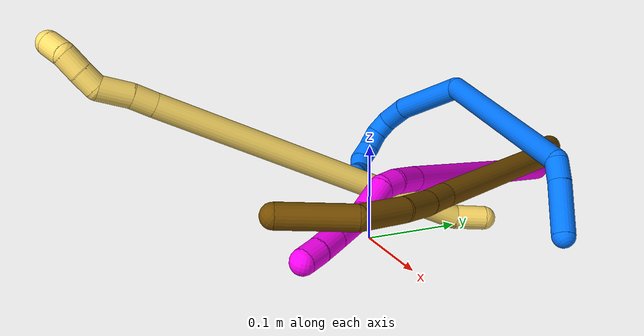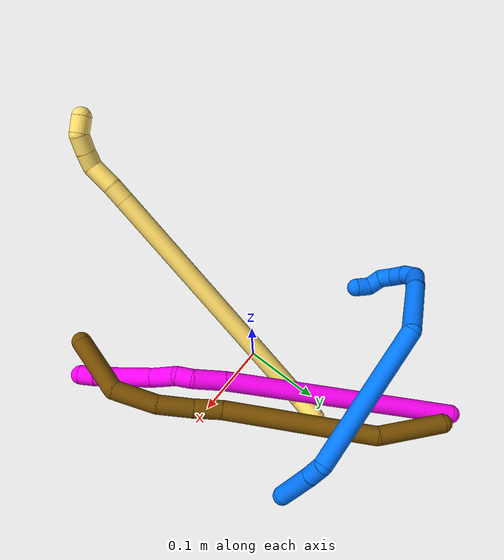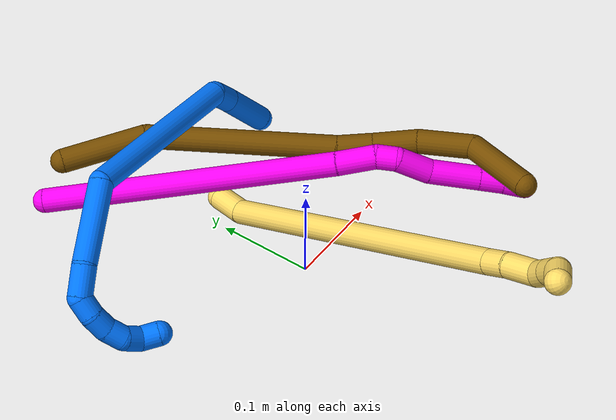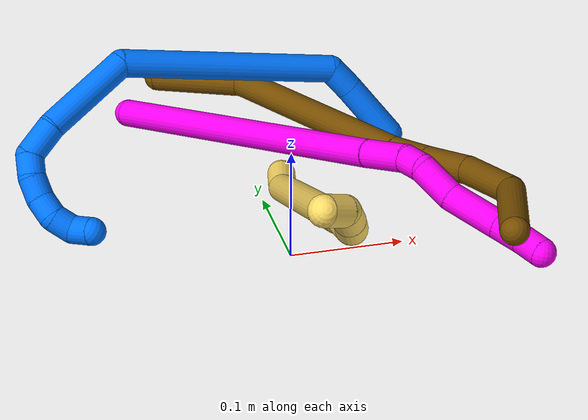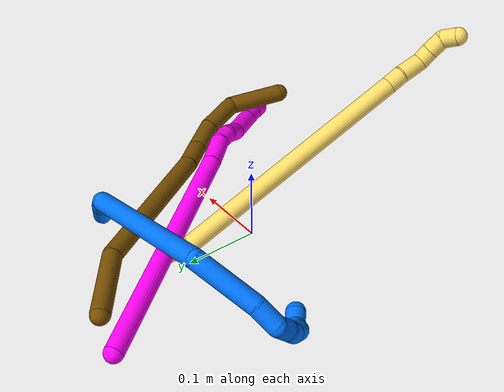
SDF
<sdf version="1.7">
 <world name="default">
  <model name="5">
   <static>0</static>
   <link name="5">
    <collision name="collision-cylinder-e_1_1_4">
     <pose>-0.002042 -0.008646 0.014094 0.550265 -0.122898 -0.034733</pose>
     <geometry><cylinder><radius>0.0125</radius><length>0.033321</length></cylinder></geometry>
     <surface>
      <friction><ode><mu>1.16</mu><mu2>1.16</mu2><slip1>0</slip1><slip2>0</slip2></ode></friction>
      <contact><ode><kp>1e+06</kp><kd>1</kd><max_vel>0</max_vel><min_depth>0.001</min_depth></ode></contact>
     </surface>
    </collision>
    <visual name="visual-cylinder-e_1_1_4">
     <pose>-0.002042 -0.008646 0.014094 0.550265 -0.122898 -0.034733</pose>
     <geometry><cylinder><radius>0.0125</radius><length>0.033321</length></cylinder></geometry>
     <material><ambient>1 0.858824 0.4 1</ambient></material>
    </visual>
    <collision name="collision-cylinder-e_2_4_5">
     <pose>-0.010283 -0.054056 0.196571 0.214959 -0.035949 -0.003879</pose>
     <geometry><cylinder><radius>0.0125</radius><length>0.344922</length></cylinder></geometry>
     <surface>
      <friction><ode><mu>1.16</mu><mu2>1.16</mu2><slip1>0</slip1><slip2>0</slip2></ode></friction>
      <contact><ode><kp>1e+06</kp><kd>1</kd><max_vel>0</max_vel><min_depth>0.001</min_depth></ode></contact>
     </surface>
    </collision>
    <visual name="visual-cylinder-e_2_4_5">
     <pose>-0.010283 -0.054056 0.196571 0.214959 -0.035949 -0.003879</pose>
     <geometry><cylinder><radius>0.0125</radius><length>0.344922</length></cylinder></geometry>
     <material><ambient>1 0.858824 0.4 1</ambient></material>
    </visual>
    <collision name="collision-cylinder-e_3_5_6">
     <pose>-0.016825 -0.09301 0.376407 0.188976 -0.029454 -0.002792</pose>
     <geometry><cylinder><radius>0.0125</radius><length>0.023331</length></cylinder></geometry>
     <surface>
      <friction><ode><mu>1.16</mu><mu2>1.16</mu2><slip1>0</slip1><slip2>0</slip2></ode></friction>
      <contact><ode><kp>1e+06</kp><kd>1</kd><max_vel>0</max_vel><min_depth>0.001</min_depth></ode></contact>
     </surface>
    </collision>
    <visual name="visual-cylinder-e_3_5_6">
     <pose>-0.016825 -0.09301 0.376407 0.188976 -0.029454 -0.002792</pose>
     <geometry><cylinder><radius>0.0125</radius><length>0.023331</length></cylinder></geometry>
     <material><ambient>1 0.858824 0.4 1</ambient></material>
    </visual>
    <collision name="collision-cylinder-e_4_6_7">
     <pose>-0.017083 -0.100845 0.403821 0.339902 0.005093 0.000874</pose>
     <geometry><cylinder><radius>0.0125</radius><length>0.033859</length></cylinder></geometry>
     <surface>
      <friction><ode><mu>1.16</mu><mu2>1.16</mu2><slip1>0</slip1><slip2>0</slip2></ode></friction>
      <contact><ode><kp>1e+06</kp><kd>1</kd><max_vel>0</max_vel><min_depth>0.001</min_depth></ode></contact>
     </surface>
    </collision>
    <visual name="visual-cylinder-e_4_6_7">
     <pose>-0.017083 -0.100845 0.403821 0.339902 0.005093 0.000874</pose>
     <geometry><cylinder><radius>0.0125</radius><length>0.033859</length></cylinder></geometry>
     <material><ambient>1 0.858824 0.4 1</ambient></material>
    </visual>
    <collision name="collision-cylinder-e_5_7_8">
     <pose>-0.019418 -0.104676 0.429389 -0.186456 -0.242778 0.022811</pose>
     <geometry><cylinder><radius>0.0125</radius><length>0.020145</length></cylinder></geometry>
     <surface>
      <friction><ode><mu>1.16</mu><mu2>1.16</mu2><slip1>0</slip1><slip2>0</slip2></ode></friction>
      <contact><ode><kp>1e+06</kp><kd>1</kd><max_vel>0</max_vel><min_depth>0.001</min_depth></ode></contact>
     </surface>
    </collision>
    <visual name="visual-cylinder-e_5_7_8">
     <pose>-0.019418 -0.104676 0.429389 -0.186456 -0.242778 0.022811</pose>
     <geometry><cylinder><radius>0.0125</radius><length>0.020145</length></cylinder></geometry>
     <material><ambient>1 0.858824 0.4 1</ambient></material>
    </visual>
    <collision name="collision-cylinder-e_6_8_9">
     <pose>-0.0254 -0.100541 0.449317 -0.221353 -0.324699 0.0364</pose>
     <geometry><cylinder><radius>0.0125</radius><length>0.022323</length></cylinder></geometry>
     <surface>
      <friction><ode><mu>1.16</mu><mu2>1.16</mu2><slip1>0</slip1><slip2>0</slip2></ode></friction>
      <contact><ode><kp>1e+06</kp><kd>1</kd><max_vel>0</max_vel><min_depth>0.001</min_depth></ode></contact>
     </surface>
    </collision>
    <visual name="visual-cylinder-e_6_8_9">
     <pose>-0.0254 -0.100541 0.449317 -0.221353 -0.324699 0.0364</pose>
     <geometry><cylinder><radius>0.0125</radius><length>0.022323</length></cylinder></geometry>
     <material><ambient>1 0.858824 0.4 1</ambient></material>
    </visual>
    <collision name="collision-cylinder-e_7_9_2">
     <pose>-0.037629 -0.098937 0.466451 0.104984 -0.901922 -0.050874</pose>
     <geometry><cylinder><radius>0.0125</radius><length>0.022099</length></cylinder></geometry>
     <surface>
      <friction><ode><mu>1.16</mu><mu2>1.16</mu2><slip1>0</slip1><slip2>0</slip2></ode></friction>
      <contact><ode><kp>1e+06</kp><kd>1</kd><max_vel>0</max_vel><min_depth>0.001</min_depth></ode></contact>
     </surface>
    </collision>
    <visual name="visual-cylinder-e_7_9_2">
     <pose>-0.037629 -0.098937 0.466451 0.104984 -0.901922 -0.050874</pose>
     <geometry><cylinder><radius>0.0125</radius><length>0.022099</length></cylinder></geometry>
     <material><ambient>1 0.858824 0.4 1</ambient></material>
    </visual>
    <collision name="collision-sphere-2">
     <pose>-0.046298 -0.099655 0.473265 0 -0 0</pose>
     <geometry><sphere><radius>0.0125</radius></sphere></geometry>
     <surface>
      <friction><ode><mu>1.16</mu><mu2>1.16</mu2><slip1>0</slip1><slip2>0</slip2></ode></friction>
      <contact><ode><kp>1e+06</kp><kd>1</kd><max_vel>0</max_vel><min_depth>0.001</min_depth></ode></contact>
     </surface>
    </collision>
    <visual name="visual-sphere-2">
     <pose>-0.046298 -0.099655 0.473265 0 -0 0</pose>
     <geometry><sphere><radius>0.0125</radius></sphere></geometry>
     <material><ambient>1 0.858824 0.4 1</ambient></material>
    </visual>
    <collision name="collision-sphere-9">
     <pose>-0.028961 -0.098219 0.459637 0 -0 0</pose>
     <geometry><sphere><radius>0.0125</radius></sphere></geometry>
     <surface>
      <friction><ode><mu>1.16</mu><mu2>1.16</mu2><slip1>0</slip1><slip2>0</slip2></ode></friction>
      <contact><ode><kp>1e+06</kp><kd>1</kd><max_vel>0</max_vel><min_depth>0.001</min_depth></ode></contact>
     </surface>
    </collision>
    <visual name="visual-sphere-9">
     <pose>-0.028961 -0.098219 0.459637 0 -0 0</pose>
     <geometry><sphere><radius>0.0125</radius></sphere></geometry>
     <material><ambient>1 0.858824 0.4 1</ambient></material>
    </visual>
    <collision name="collision-sphere-4">
     <pose>-0.004085 -0.017293 0.028188 0 -0 0</pose>
     <geometry><sphere><radius>0.0125</radius></sphere></geometry>
     <surface>
      <friction><ode><mu>1.16</mu><mu2>1.16</mu2><slip1>0</slip1><slip2>0</slip2></ode></friction>
      <contact><ode><kp>1e+06</kp><kd>1</kd><max_vel>0</max_vel><min_depth>0.001</min_depth></ode></contact>
     </surface>
    </collision>
    <visual name="visual-sphere-4">
     <pose>-0.004085 -0.017293 0.028188 0 -0 0</pose>
     <geometry><sphere><radius>0.0125</radius></sphere></geometry>
     <material><ambient>1 0.858824 0.4 1</ambient></material>
    </visual>
    <collision name="collision-sphere-1">
     <geometry><sphere><radius>0.0125</radius></sphere></geometry>
     <surface>
      <friction><ode><mu>1.16</mu><mu2>1.16</mu2><slip1>0</slip1><slip2>0</slip2></ode></friction>
      <contact><ode><kp>1e+06</kp><kd>1</kd><max_vel>0</max_vel><min_depth>0.001</min_depth></ode></contact>
     </surface>
    </collision>
    <visual name="visual-sphere-1">
     <geometry><sphere><radius>0.0125</radius></sphere></geometry>
     <material><ambient>1 0.858824 0.4 1</ambient></material>
    </visual>
    <collision name="collision-sphere-8">
     <pose>-0.021839 -0.102864 0.438996 0 -0 0</pose>
     <geometry><sphere><radius>0.0125</radius></sphere></geometry>
     <surface>
      <friction><ode><mu>1.16</mu><mu2>1.16</mu2><slip1>0</slip1><slip2>0</slip2></ode></friction>
      <contact><ode><kp>1e+06</kp><kd>1</kd><max_vel>0</max_vel><min_depth>0.001</min_depth></ode></contact>
     </surface>
    </collision>
    <visual name="visual-sphere-8">
     <pose>-0.021839 -0.102864 0.438996 0 -0 0</pose>
     <geometry><sphere><radius>0.0125</radius></sphere></geometry>
     <material><ambient>1 0.858824 0.4 1</ambient></material>
    </visual>
    <collision name="collision-sphere-5">
     <pose>-0.016482 -0.090819 0.364954 0 -0 0</pose>
     <geometry><sphere><radius>0.0125</radius></sphere></geometry>
     <surface>
      <friction><ode><mu>1.16</mu><mu2>1.16</mu2><slip1>0</slip1><slip2>0</slip2></ode></friction>
      <contact><ode><kp>1e+06</kp><kd>1</kd><max_vel>0</max_vel><min_depth>0.001</min_depth></ode></contact>
     </surface>
    </collision>
    <visual name="visual-sphere-5">
     <pose>-0.016482 -0.090819 0.364954 0 -0 0</pose>
     <geometry><sphere><radius>0.0125</radius></sphere></geometry>
     <material><ambient>1 0.858824 0.4 1</ambient></material>
    </visual>
    <collision name="collision-sphere-6">
     <pose>-0.017169 -0.0952 0.38786 0 -0 0</pose>
     <geometry><sphere><radius>0.0125</radius></sphere></geometry>
     <surface>
      <friction><ode><mu>1.16</mu><mu2>1.16</mu2><slip1>0</slip1><slip2>0</slip2></ode></friction>
      <contact><ode><kp>1e+06</kp><kd>1</kd><max_vel>0</max_vel><min_depth>0.001</min_depth></ode></contact>
     </surface>
    </collision>
    <visual name="visual-sphere-6">
     <pose>-0.017169 -0.0952 0.38786 0 -0 0</pose>
     <geometry><sphere><radius>0.0125</radius></sphere></geometry>
     <material><ambient>1 0.858824 0.4 1</ambient></material>
    </visual>
    <collision name="collision-sphere-7">
     <pose>-0.016996 -0.106489 0.419781 0 -0 0</pose>
     <geometry><sphere><radius>0.0125</radius></sphere></geometry>
     <surface>
      <friction><ode><mu>1.16</mu><mu2>1.16</mu2><slip1>0</slip1><slip2>0</slip2></ode></friction>
      <contact><ode><kp>1e+06</kp><kd>1</kd><max_vel>0</max_vel><min_depth>0.001</min_depth></ode></contact>
     </surface>
    </collision>
    <visual name="visual-sphere-7">
     <pose>-0.016996 -0.106489 0.419781 0 -0 0</pose>
     <geometry><sphere><radius>0.0125</radius></sphere></geometry>
     <material><ambient>1 0.858824 0.4 1</ambient></material>
    </visual>
    <inertial>
     <pose>-0.012751 -0.062114 0.239429 0 -0 0</pose>
     <mass>0.5</mass>
     <inertia>
      <ixx>0.003429</ixx>
      <ixy>0</ixy>
      <ixz>0</ixz>
      <iyy>0.003348</iyy>
      <iyz>0</iyz>
      <izz>0.000899</izz>
     </inertia>
    </inertial>
   </link>
   <pose>0.023051 0.123808 0.011487 0.916341 0.052907 -0.098674</pose>
  </model>
  <model name="10">
   <static>0</static>
   <link name="10">
    <collision name="collision-cylinder-e_1_1_4">
     <pose>0.067945 -0.134247 0.025618 1.38223 0.461361 0.383781</pose>
     <geometry><cylinder><radius>0.0125</radius><length>0.305254</length></cylinder></geometry>
     <surface>
      <friction><ode><mu>1.16</mu><mu2>1.16</mu2><slip1>0</slip1><slip2>0</slip2></ode></friction>
      <contact><ode><kp>1e+06</kp><kd>1</kd><max_vel>0</max_vel><min_depth>0.001</min_depth></ode></contact>
     </surface>
    </collision>
    <visual name="visual-cylinder-e_1_1_4">
     <pose>0.067945 -0.134247 0.025618 1.38223 0.461361 0.383781</pose>
     <geometry><cylinder><radius>0.0125</radius><length>0.305254</length></cylinder></geometry>
     <material><ambient>1 0 0.964706 1</ambient></material>
    </visual>
    <collision name="collision-cylinder-e_2_4_5">
     <pose>0.146256 -0.285378 0.054898 1.35728 0.54045 0.43954</pose>
     <geometry><cylinder><radius>0.0125</radius><length>0.040296</length></cylinder></geometry>
     <surface>
      <friction><ode><mu>1.16</mu><mu2>1.16</mu2><slip1>0</slip1><slip2>0</slip2></ode></friction>
      <contact><ode><kp>1e+06</kp><kd>1</kd><max_vel>0</max_vel><min_depth>0.001</min_depth></ode></contact>
     </surface>
    </collision>
    <visual name="visual-cylinder-e_2_4_5">
     <pose>0.146256 -0.285378 0.054898 1.35728 0.54045 0.43954</pose>
     <geometry><cylinder><radius>0.0125</radius><length>0.040296</length></cylinder></geometry>
     <material><ambient>1 0 0.964706 1</ambient></material>
    </visual>
    <collision name="collision-cylinder-e_3_5_6">
     <pose>0.161004 -0.311663 0.057601 1.6723 0.434177 0.478971</pose>
     <geometry><cylinder><radius>0.0125</radius><length>0.020831</length></cylinder></geometry>
     <surface>
      <friction><ode><mu>1.16</mu><mu2>1.16</mu2><slip1>0</slip1><slip2>0</slip2></ode></friction>
      <contact><ode><kp>1e+06</kp><kd>1</kd><max_vel>0</max_vel><min_depth>0.001</min_depth></ode></contact>
     </surface>
    </collision>
    <visual name="visual-cylinder-e_3_5_6">
     <pose>0.161004 -0.311663 0.057601 1.6723 0.434177 0.478971</pose>
     <geometry><cylinder><radius>0.0125</radius><length>0.020831</length></cylinder></geometry>
     <material><ambient>1 0 0.964706 1</ambient></material>
    </visual>
    <collision name="collision-cylinder-e_4_6_7">
     <pose>0.175546 -0.333326 0.048427 2.16109 0.602864 1.05496</pose>
     <geometry><cylinder><radius>0.0125</radius><length>0.03584</length></cylinder></geometry>
     <surface>
      <friction><ode><mu>1.16</mu><mu2>1.16</mu2><slip1>0</slip1><slip2>0</slip2></ode></friction>
      <contact><ode><kp>1e+06</kp><kd>1</kd><max_vel>0</max_vel><min_depth>0.001</min_depth></ode></contact>
     </surface>
    </collision>
    <visual name="visual-cylinder-e_4_6_7">
     <pose>0.175546 -0.333326 0.048427 2.16109 0.602864 1.05496</pose>
     <geometry><cylinder><radius>0.0125</radius><length>0.03584</length></cylinder></geometry>
     <material><ambient>1 0 0.964706 1</ambient></material>
    </visual>
    <collision name="collision-cylinder-e_5_7_8">
     <pose>0.19991 -0.366274 0.035354 1.80145 0.58926 0.731495</pose>
     <geometry><cylinder><radius>0.0125</radius><length>0.051115</length></cylinder></geometry>
     <surface>
      <friction><ode><mu>1.16</mu><mu2>1.16</mu2><slip1>0</slip1><slip2>0</slip2></ode></friction>
      <contact><ode><kp>1e+06</kp><kd>1</kd><max_vel>0</max_vel><min_depth>0.001</min_depth></ode></contact>
     </surface>
    </collision>
    <visual name="visual-cylinder-e_5_7_8">
     <pose>0.19991 -0.366274 0.035354 1.80145 0.58926 0.731495</pose>
     <geometry><cylinder><radius>0.0125</radius><length>0.051115</length></cylinder></geometry>
     <material><ambient>1 0 0.964706 1</ambient></material>
    </visual>
    <collision name="collision-cylinder-e_6_8_9">
     <pose>0.22101 -0.397215 0.028132 1.79735 0.580017 0.717607</pose>
     <geometry><cylinder><radius>0.0125</radius><length>0.025167</length></cylinder></geometry>
     <surface>
      <friction><ode><mu>1.16</mu><mu2>1.16</mu2><slip1>0</slip1><slip2>0</slip2></ode></friction>
      <contact><ode><kp>1e+06</kp><kd>1</kd><max_vel>0</max_vel><min_depth>0.001</min_depth></ode></contact>
     </surface>
    </collision>
    <visual name="visual-cylinder-e_6_8_9">
     <pose>0.22101 -0.397215 0.028132 1.79735 0.580017 0.717607</pose>
     <geometry><cylinder><radius>0.0125</radius><length>0.025167</length></cylinder></geometry>
     <material><ambient>1 0 0.964706 1</ambient></material>
    </visual>
    <collision name="collision-cylinder-e_7_9_2">
     <pose>0.233081 -0.416603 0.023451 1.81926 0.502305 0.637118</pose>
     <geometry><cylinder><radius>0.0125</radius><length>0.021496</length></cylinder></geometry>
     <surface>
      <friction><ode><mu>1.16</mu><mu2>1.16</mu2><slip1>0</slip1><slip2>0</slip2></ode></friction>
      <contact><ode><kp>1e+06</kp><kd>1</kd><max_vel>0</max_vel><min_depth>0.001</min_depth></ode></contact>
     </surface>
    </collision>
    <visual name="visual-cylinder-e_7_9_2">
     <pose>0.233081 -0.416603 0.023451 1.81926 0.502305 0.637118</pose>
     <geometry><cylinder><radius>0.0125</radius><length>0.021496</length></cylinder></geometry>
     <material><ambient>1 0 0.964706 1</ambient></material>
    </visual>
    <collision name="collision-sphere-2">
     <pose>0.238256 -0.425734 0.021135 0 -0 0</pose>
     <geometry><sphere><radius>0.0125</radius></sphere></geometry>
     <surface>
      <friction><ode><mu>1.16</mu><mu2>1.16</mu2><slip1>0</slip1><slip2>0</slip2></ode></friction>
      <contact><ode><kp>1e+06</kp><kd>1</kd><max_vel>0</max_vel><min_depth>0.001</min_depth></ode></contact>
     </surface>
    </collision>
    <visual name="visual-sphere-2">
     <pose>0.238256 -0.425734 0.021135 0 -0 0</pose>
     <geometry><sphere><radius>0.0125</radius></sphere></geometry>
     <material><ambient>1 0 0.964706 1</ambient></material>
    </visual>
    <collision name="collision-sphere-9">
     <pose>0.227907 -0.407472 0.025768 0 -0 0</pose>
     <geometry><sphere><radius>0.0125</radius></sphere></geometry>
     <surface>
      <friction><ode><mu>1.16</mu><mu2>1.16</mu2><slip1>0</slip1><slip2>0</slip2></ode></friction>
      <contact><ode><kp>1e+06</kp><kd>1</kd><max_vel>0</max_vel><min_depth>0.001</min_depth></ode></contact>
     </surface>
    </collision>
    <visual name="visual-sphere-9">
     <pose>0.227907 -0.407472 0.025768 0 -0 0</pose>
     <geometry><sphere><radius>0.0125</radius></sphere></geometry>
     <material><ambient>1 0 0.964706 1</ambient></material>
    </visual>
    <collision name="collision-sphere-4">
     <pose>0.135889 -0.268494 0.051237 0 -0 0</pose>
     <geometry><sphere><radius>0.0125</radius></sphere></geometry>
     <surface>
      <friction><ode><mu>1.16</mu><mu2>1.16</mu2><slip1>0</slip1><slip2>0</slip2></ode></friction>
      <contact><ode><kp>1e+06</kp><kd>1</kd><max_vel>0</max_vel><min_depth>0.001</min_depth></ode></contact>
     </surface>
    </collision>
    <visual name="visual-sphere-4">
     <pose>0.135889 -0.268494 0.051237 0 -0 0</pose>
     <geometry><sphere><radius>0.0125</radius></sphere></geometry>
     <material><ambient>1 0 0.964706 1</ambient></material>
    </visual>
    <collision name="collision-sphere-1">
     <geometry><sphere><radius>0.0125</radius></sphere></geometry>
     <surface>
      <friction><ode><mu>1.16</mu><mu2>1.16</mu2><slip1>0</slip1><slip2>0</slip2></ode></friction>
      <contact><ode><kp>1e+06</kp><kd>1</kd><max_vel>0</max_vel><min_depth>0.001</min_depth></ode></contact>
     </surface>
    </collision>
    <visual name="visual-sphere-1">
     <geometry><sphere><radius>0.0125</radius></sphere></geometry>
     <material><ambient>1 0 0.964706 1</ambient></material>
    </visual>
    <collision name="collision-sphere-8">
     <pose>0.214114 -0.386959 0.030496 0 -0 0</pose>
     <geometry><sphere><radius>0.0125</radius></sphere></geometry>
     <surface>
      <friction><ode><mu>1.16</mu><mu2>1.16</mu2><slip1>0</slip1><slip2>0</slip2></ode></friction>
      <contact><ode><kp>1e+06</kp><kd>1</kd><max_vel>0</max_vel><min_depth>0.001</min_depth></ode></contact>
     </surface>
    </collision>
    <visual name="visual-sphere-8">
     <pose>0.214114 -0.386959 0.030496 0 -0 0</pose>
     <geometry><sphere><radius>0.0125</radius></sphere></geometry>
     <material><ambient>1 0 0.964706 1</ambient></material>
    </visual>
    <collision name="collision-sphere-5">
     <pose>0.156623 -0.302262 0.058558 0 -0 0</pose>
     <geometry><sphere><radius>0.0125</radius></sphere></geometry>
     <surface>
      <friction><ode><mu>1.16</mu><mu2>1.16</mu2><slip1>0</slip1><slip2>0</slip2></ode></friction>
      <contact><ode><kp>1e+06</kp><kd>1</kd><max_vel>0</max_vel><min_depth>0.001</min_depth></ode></contact>
     </surface>
    </collision>
    <visual name="visual-sphere-5">
     <pose>0.156623 -0.302262 0.058558 0 -0 0</pose>
     <geometry><sphere><radius>0.0125</radius></sphere></geometry>
     <material><ambient>1 0 0.964706 1</ambient></material>
    </visual>
    <collision name="collision-sphere-6">
     <pose>0.165385 -0.321063 0.056643 0 -0 0</pose>
     <geometry><sphere><radius>0.0125</radius></sphere></geometry>
     <surface>
      <friction><ode><mu>1.16</mu><mu2>1.16</mu2><slip1>0</slip1><slip2>0</slip2></ode></friction>
      <contact><ode><kp>1e+06</kp><kd>1</kd><max_vel>0</max_vel><min_depth>0.001</min_depth></ode></contact>
     </surface>
    </collision>
    <visual name="visual-sphere-6">
     <pose>0.165385 -0.321063 0.056643 0 -0 0</pose>
     <geometry><sphere><radius>0.0125</radius></sphere></geometry>
     <material><ambient>1 0 0.964706 1</ambient></material>
    </visual>
    <collision name="collision-sphere-7">
     <pose>0.185707 -0.345589 0.040211 0 -0 0</pose>
     <geometry><sphere><radius>0.0125</radius></sphere></geometry>
     <surface>
      <friction><ode><mu>1.16</mu><mu2>1.16</mu2><slip1>0</slip1><slip2>0</slip2></ode></friction>
      <contact><ode><kp>1e+06</kp><kd>1</kd><max_vel>0</max_vel><min_depth>0.001</min_depth></ode></contact>
     </surface>
    </collision>
    <visual name="visual-sphere-7">
     <pose>0.185707 -0.345589 0.040211 0 -0 0</pose>
     <geometry><sphere><radius>0.0125</radius></sphere></geometry>
     <material><ambient>1 0 0.964706 1</ambient></material>
    </visual>
    <inertial>
     <pose>0.114141 -0.217184 0.031974 0 -0 0</pose>
     <mass>0.5</mass>
     <inertia>
      <ixx>0.002831</ixx>
      <ixy>0</ixy>
      <ixz>0</ixz>
      <iyy>0.001593</iyy>
      <iyz>0</iyz>
      <izz>0.001045</izz>
     </inertia>
    </inertial>
   </link>
   <pose>-0.089661 0.263105 0.01695 -0.18778 0.227599 0.024684</pose>
  </model>
  <model name="12">
   <static>0</static>
   <link name="12">
    <collision name="collision-cylinder-e_1_1_4">
     <pose>0.04151 -0.01524 -0.001528 1.67072 1.21731 1.31271</pose>
     <geometry><cylinder><radius>0.0125</radius><length>0.088492</length></cylinder></geometry>
     <surface>
      <friction><ode><mu>1.16</mu><mu2>1.16</mu2><slip1>0</slip1><slip2>0</slip2></ode></friction>
      <contact><ode><kp>1e+06</kp><kd>1</kd><max_vel>0</max_vel><min_depth>0.001</min_depth></ode></contact>
     </surface>
    </collision>
    <visual name="visual-cylinder-e_1_1_4">
     <pose>0.04151 -0.01524 -0.001528 1.67072 1.21731 1.31271</pose>
     <geometry><cylinder><radius>0.0125</radius><length>0.088492</length></cylinder></geometry>
     <material><ambient>0.466667 0.301961 0 1</ambient></material>
    </visual>
    <collision name="collision-cylinder-e_2_4_5">
     <pose>0.158537 -0.090305 0.016472 1.25528 0.876057 0.655136</pose>
     <geometry><cylinder><radius>0.0125</radius><length>0.196601</length></cylinder></geometry>
     <surface>
      <friction><ode><mu>1.16</mu><mu2>1.16</mu2><slip1>0</slip1><slip2>0</slip2></ode></friction>
      <contact><ode><kp>1e+06</kp><kd>1</kd><max_vel>0</max_vel><min_depth>0.001</min_depth></ode></contact>
     </surface>
    </collision>
    <visual name="visual-cylinder-e_2_4_5">
     <pose>0.158537 -0.090305 0.016472 1.25528 0.876057 0.655136</pose>
     <geometry><cylinder><radius>0.0125</radius><length>0.196601</length></cylinder></geometry>
     <material><ambient>0.466667 0.301961 0 1</ambient></material>
    </visual>
    <collision name="collision-cylinder-e_3_5_6">
     <pose>0.249408 -0.15965 0.038267 1.33691 1.00332 0.817498</pose>
     <geometry><cylinder><radius>0.0125</radius><length>0.036417</length></cylinder></geometry>
     <surface>
      <friction><ode><mu>1.16</mu><mu2>1.16</mu2><slip1>0</slip1><slip2>0</slip2></ode></friction>
      <contact><ode><kp>1e+06</kp><kd>1</kd><max_vel>0</max_vel><min_depth>0.001</min_depth></ode></contact>
     </surface>
    </collision>
    <visual name="visual-cylinder-e_3_5_6">
     <pose>0.249408 -0.15965 0.038267 1.33691 1.00332 0.817498</pose>
     <geometry><cylinder><radius>0.0125</radius><length>0.036417</length></cylinder></geometry>
     <material><ambient>0.466667 0.301961 0 1</ambient></material>
    </visual>
    <collision name="collision-cylinder-e_4_6_7">
     <pose>0.284191 -0.180392 0.045101 1.18445 1.01323 0.714629</pose>
     <geometry><cylinder><radius>0.0125</radius><length>0.045793</length></cylinder></geometry>
     <surface>
      <friction><ode><mu>1.16</mu><mu2>1.16</mu2><slip1>0</slip1><slip2>0</slip2></ode></friction>
      <contact><ode><kp>1e+06</kp><kd>1</kd><max_vel>0</max_vel><min_depth>0.001</min_depth></ode></contact>
     </surface>
    </collision>
    <visual name="visual-cylinder-e_4_6_7">
     <pose>0.284191 -0.180392 0.045101 1.18445 1.01323 0.714629</pose>
     <geometry><cylinder><radius>0.0125</radius><length>0.045793</length></cylinder></geometry>
     <material><ambient>0.466667 0.301961 0 1</ambient></material>
    </visual>
    <collision name="collision-cylinder-e_5_7_8">
     <pose>0.32415 -0.208706 0.05978 1.03646 0.801994 0.474404</pose>
     <geometry><cylinder><radius>0.0125</radius><length>0.057127</length></cylinder></geometry>
     <surface>
      <friction><ode><mu>1.16</mu><mu2>1.16</mu2><slip1>0</slip1><slip2>0</slip2></ode></friction>
      <contact><ode><kp>1e+06</kp><kd>1</kd><max_vel>0</max_vel><min_depth>0.001</min_depth></ode></contact>
     </surface>
    </collision>
    <visual name="visual-cylinder-e_5_7_8">
     <pose>0.32415 -0.208706 0.05978 1.03646 0.801994 0.474404</pose>
     <geometry><cylinder><radius>0.0125</radius><length>0.057127</length></cylinder></geometry>
     <material><ambient>0.466667 0.301961 0 1</ambient></material>
    </visual>
    <collision name="collision-cylinder-e_6_8_2">
     <pose>0.352582 -0.250744 0.09715 0.741173 0.210682 0.082116</pose>
     <geometry><cylinder><radius>0.0125</radius><length>0.07557</length></cylinder></geometry>
     <surface>
      <friction><ode><mu>1.16</mu><mu2>1.16</mu2><slip1>0</slip1><slip2>0</slip2></ode></friction>
      <contact><ode><kp>1e+06</kp><kd>1</kd><max_vel>0</max_vel><min_depth>0.001</min_depth></ode></contact>
     </surface>
    </collision>
    <visual name="visual-cylinder-e_6_8_2">
     <pose>0.352582 -0.250744 0.09715 0.741173 0.210682 0.082116</pose>
     <geometry><cylinder><radius>0.0125</radius><length>0.07557</length></cylinder></geometry>
     <material><ambient>0.466667 0.301961 0 1</ambient></material>
    </visual>
    <collision name="collision-sphere-2">
     <pose>0.360484 -0.27569 0.124407 0 -0 0</pose>
     <geometry><sphere><radius>0.0125</radius></sphere></geometry>
     <surface>
      <friction><ode><mu>1.16</mu><mu2>1.16</mu2><slip1>0</slip1><slip2>0</slip2></ode></friction>
      <contact><ode><kp>1e+06</kp><kd>1</kd><max_vel>0</max_vel><min_depth>0.001</min_depth></ode></contact>
     </surface>
    </collision>
    <visual name="visual-sphere-2">
     <pose>0.360484 -0.27569 0.124407 0 -0 0</pose>
     <geometry><sphere><radius>0.0125</radius></sphere></geometry>
     <material><ambient>0.466667 0.301961 0 1</ambient></material>
    </visual>
    <collision name="collision-sphere-4">
     <pose>0.083021 -0.030481 -0.003056 0 -0 0</pose>
     <geometry><sphere><radius>0.0125</radius></sphere></geometry>
     <surface>
      <friction><ode><mu>1.16</mu><mu2>1.16</mu2><slip1>0</slip1><slip2>0</slip2></ode></friction>
      <contact><ode><kp>1e+06</kp><kd>1</kd><max_vel>0</max_vel><min_depth>0.001</min_depth></ode></contact>
     </surface>
    </collision>
    <visual name="visual-sphere-4">
     <pose>0.083021 -0.030481 -0.003056 0 -0 0</pose>
     <geometry><sphere><radius>0.0125</radius></sphere></geometry>
     <material><ambient>0.466667 0.301961 0 1</ambient></material>
    </visual>
    <collision name="collision-sphere-1">
     <geometry><sphere><radius>0.0125</radius></sphere></geometry>
     <surface>
      <friction><ode><mu>1.16</mu><mu2>1.16</mu2><slip1>0</slip1><slip2>0</slip2></ode></friction>
      <contact><ode><kp>1e+06</kp><kd>1</kd><max_vel>0</max_vel><min_depth>0.001</min_depth></ode></contact>
     </surface>
    </collision>
    <visual name="visual-sphere-1">
     <geometry><sphere><radius>0.0125</radius></sphere></geometry>
     <material><ambient>0.466667 0.301961 0 1</ambient></material>
    </visual>
    <collision name="collision-sphere-8">
     <pose>0.34468 -0.225797 0.069894 0 -0 0</pose>
     <geometry><sphere><radius>0.0125</radius></sphere></geometry>
     <surface>
      <friction><ode><mu>1.16</mu><mu2>1.16</mu2><slip1>0</slip1><slip2>0</slip2></ode></friction>
      <contact><ode><kp>1e+06</kp><kd>1</kd><max_vel>0</max_vel><min_depth>0.001</min_depth></ode></contact>
     </surface>
    </collision>
    <visual name="visual-sphere-8">
     <pose>0.34468 -0.225797 0.069894 0 -0 0</pose>
     <geometry><sphere><radius>0.0125</radius></sphere></geometry>
     <material><ambient>0.466667 0.301961 0 1</ambient></material>
    </visual>
    <collision name="collision-sphere-5">
     <pose>0.234054 -0.150129 0.035999 0 -0 0</pose>
     <geometry><sphere><radius>0.0125</radius></sphere></geometry>
     <surface>
      <friction><ode><mu>1.16</mu><mu2>1.16</mu2><slip1>0</slip1><slip2>0</slip2></ode></friction>
      <contact><ode><kp>1e+06</kp><kd>1</kd><max_vel>0</max_vel><min_depth>0.001</min_depth></ode></contact>
     </surface>
    </collision>
    <visual name="visual-sphere-5">
     <pose>0.234054 -0.150129 0.035999 0 -0 0</pose>
     <geometry><sphere><radius>0.0125</radius></sphere></geometry>
     <material><ambient>0.466667 0.301961 0 1</ambient></material>
    </visual>
    <collision name="collision-sphere-6">
     <pose>0.264763 -0.16917 0.040536 0 -0 0</pose>
     <geometry><sphere><radius>0.0125</radius></sphere></geometry>
     <surface>
      <friction><ode><mu>1.16</mu><mu2>1.16</mu2><slip1>0</slip1><slip2>0</slip2></ode></friction>
      <contact><ode><kp>1e+06</kp><kd>1</kd><max_vel>0</max_vel><min_depth>0.001</min_depth></ode></contact>
     </surface>
    </collision>
    <visual name="visual-sphere-6">
     <pose>0.264763 -0.16917 0.040536 0 -0 0</pose>
     <geometry><sphere><radius>0.0125</radius></sphere></geometry>
     <material><ambient>0.466667 0.301961 0 1</ambient></material>
    </visual>
    <collision name="collision-sphere-7">
     <pose>0.30362 -0.191615 0.049666 0 -0 0</pose>
     <geometry><sphere><radius>0.0125</radius></sphere></geometry>
     <surface>
      <friction><ode><mu>1.16</mu><mu2>1.16</mu2><slip1>0</slip1><slip2>0</slip2></ode></friction>
      <contact><ode><kp>1e+06</kp><kd>1</kd><max_vel>0</max_vel><min_depth>0.001</min_depth></ode></contact>
     </surface>
    </collision>
    <visual name="visual-sphere-7">
     <pose>0.30362 -0.191615 0.049666 0 -0 0</pose>
     <geometry><sphere><radius>0.0125</radius></sphere></geometry>
     <material><ambient>0.466667 0.301961 0 1</ambient></material>
    </visual>
    <inertial>
     <pose>0.204202 -0.128098 0.034637 0 -0 0</pose>
     <mass>0.5</mass>
     <inertia>
      <ixx>0.000699</ixx>
      <ixy>0</ixy>
      <ixz>0</ixz>
      <iyy>0.000814</iyy>
      <iyz>0</iyz>
      <izz>-0.000119</izz>
     </inertia>
    </inertial>
   </link>
   <pose>-0.061149 0.260302 0.052641 0.85121 -0.44613 -0.487</pose>
  </model>
  <model name="14">
   <static>0</static>
   <link name="14">
    <collision name="collision-cylinder-e_1_1_4">
     <pose>0.009663 0.000342 0.027313 -0.012536 0.340015 -0.002152</pose>
     <geometry><cylinder><radius>0.0125</radius><length>0.057948</length></cylinder></geometry>
     <surface>
      <friction><ode><mu>1.16</mu><mu2>1.16</mu2><slip1>0</slip1><slip2>0</slip2></ode></friction>
      <contact><ode><kp>1e+06</kp><kd>1</kd><max_vel>0</max_vel><min_depth>0.001</min_depth></ode></contact>
     </surface>
    </collision>
    <visual name="visual-cylinder-e_1_1_4">
     <pose>0.009663 0.000342 0.027313 -0.012536 0.340015 -0.002152</pose>
     <geometry><cylinder><radius>0.0125</radius><length>0.057948</length></cylinder></geometry>
     <material><ambient>0 0.462745 1 1</ambient></material>
    </visual>
    <collision name="collision-cylinder-e_2_4_5">
     <pose>0.022622 0.000681 0.066552 0.000334 0.269694 4.5e-05</pose>
     <geometry><cylinder><radius>0.0125</radius><length>0.024747</length></cylinder></geometry>
     <surface>
      <friction><ode><mu>1.16</mu><mu2>1.16</mu2><slip1>0</slip1><slip2>0</slip2></ode></friction>
      <contact><ode><kp>1e+06</kp><kd>1</kd><max_vel>0</max_vel><min_depth>0.001</min_depth></ode></contact>
     </surface>
    </collision>
    <visual name="visual-cylinder-e_2_4_5">
     <pose>0.022622 0.000681 0.066552 0.000334 0.269694 4.5e-05</pose>
     <geometry><cylinder><radius>0.0125</radius><length>0.024747</length></cylinder></geometry>
     <material><ambient>0 0.462745 1 1</ambient></material>
    </visual>
    <collision name="collision-cylinder-e_3_5_6">
     <pose>-0.012673 0.027535 0.165843 -0.298257 -0.399528 0.060819</pose>
     <geometry><cylinder><radius>0.0125</radius><length>0.198426</length></cylinder></geometry>
     <surface>
      <friction><ode><mu>1.16</mu><mu2>1.16</mu2><slip1>0</slip1><slip2>0</slip2></ode></friction>
      <contact><ode><kp>1e+06</kp><kd>1</kd><max_vel>0</max_vel><min_depth>0.001</min_depth></ode></contact>
     </surface>
    </collision>
    <visual name="visual-cylinder-e_3_5_6">
     <pose>-0.012673 0.027535 0.165843 -0.298257 -0.399528 0.060819</pose>
     <geometry><cylinder><radius>0.0125</radius><length>0.198426</length></cylinder></geometry>
     <material><ambient>0 0.462745 1 1</ambient></material>
    </visual>
    <collision name="collision-cylinder-e_4_6_7">
     <pose>-0.088722 0.067525 0.268697 -0.703176 -1.07399 0.430035</pose>
     <geometry><cylinder><radius>0.0125</radius><length>0.085214</length></cylinder></geometry>
     <surface>
      <friction><ode><mu>1.16</mu><mu2>1.16</mu2><slip1>0</slip1><slip2>0</slip2></ode></friction>
      <contact><ode><kp>1e+06</kp><kd>1</kd><max_vel>0</max_vel><min_depth>0.001</min_depth></ode></contact>
     </surface>
    </collision>
    <visual name="visual-cylinder-e_4_6_7">
     <pose>-0.088722 0.067525 0.268697 -0.703176 -1.07399 0.430035</pose>
     <geometry><cylinder><radius>0.0125</radius><length>0.085214</length></cylinder></geometry>
     <material><ambient>0 0.462745 1 1</ambient></material>
    </visual>
    <collision name="collision-cylinder-e_5_7_8">
     <pose>-0.140807 0.087082 0.286724 -1.19474 -1.12957 0.813967</pose>
     <geometry><cylinder><radius>0.0125</radius><length>0.032356</length></cylinder></geometry>
     <surface>
      <friction><ode><mu>1.16</mu><mu2>1.16</mu2><slip1>0</slip1><slip2>0</slip2></ode></friction>
      <contact><ode><kp>1e+06</kp><kd>1</kd><max_vel>0</max_vel><min_depth>0.001</min_depth></ode></contact>
     </surface>
    </collision>
    <visual name="visual-cylinder-e_5_7_8">
     <pose>-0.140807 0.087082 0.286724 -1.19474 -1.12957 0.813967</pose>
     <geometry><cylinder><radius>0.0125</radius><length>0.032356</length></cylinder></geometry>
     <material><ambient>0 0.462745 1 1</ambient></material>
    </visual>
    <collision name="collision-cylinder-e_6_8_9">
     <pose>-0.164597 0.092615 0.285035 2.93337 -1.13021 -2.81496</pose>
     <geometry><cylinder><radius>0.0125</radius><length>0.020259</length></cylinder></geometry>
     <surface>
      <friction><ode><mu>1.16</mu><mu2>1.16</mu2><slip1>0</slip1><slip2>0</slip2></ode></friction>
      <contact><ode><kp>1e+06</kp><kd>1</kd><max_vel>0</max_vel><min_depth>0.001</min_depth></ode></contact>
     </surface>
    </collision>
    <visual name="visual-cylinder-e_6_8_9">
     <pose>-0.164597 0.092615 0.285035 2.93337 -1.13021 -2.81496</pose>
     <geometry><cylinder><radius>0.0125</radius><length>0.020259</length></cylinder></geometry>
     <material><ambient>0 0.462745 1 1</ambient></material>
    </visual>
    <collision name="collision-cylinder-e_7_9_10">
     <pose>-0.181413 0.090749 0.273868 3.00233 -0.829336 -2.82732</pose>
     <geometry><cylinder><radius>0.0125</radius><length>0.020754</length></cylinder></geometry>
     <surface>
      <friction><ode><mu>1.16</mu><mu2>1.16</mu2><slip1>0</slip1><slip2>0</slip2></ode></friction>
      <contact><ode><kp>1e+06</kp><kd>1</kd><max_vel>0</max_vel><min_depth>0.001</min_depth></ode></contact>
     </surface>
    </collision>
    <visual name="visual-cylinder-e_7_9_10">
     <pose>-0.181413 0.090749 0.273868 3.00233 -0.829336 -2.82732</pose>
     <geometry><cylinder><radius>0.0125</radius><length>0.020754</length></cylinder></geometry>
     <material><ambient>0 0.462745 1 1</ambient></material>
    </visual>
    <collision name="collision-cylinder-e_8_10_11">
     <pose>-0.195368 0.086184 0.26003 2.66141 -0.681061 -1.93239</pose>
     <geometry><cylinder><radius>0.0125</radius><length>0.02002</length></cylinder></geometry>
     <surface>
      <friction><ode><mu>1.16</mu><mu2>1.16</mu2><slip1>0</slip1><slip2>0</slip2></ode></friction>
      <contact><ode><kp>1e+06</kp><kd>1</kd><max_vel>0</max_vel><min_depth>0.001</min_depth></ode></contact>
     </surface>
    </collision>
    <visual name="visual-cylinder-e_8_10_11">
     <pose>-0.195368 0.086184 0.26003 2.66141 -0.681061 -1.93239</pose>
     <geometry><cylinder><radius>0.0125</radius><length>0.02002</length></cylinder></geometry>
     <material><ambient>0 0.462745 1 1</ambient></material>
    </visual>
    <collision name="collision-cylinder-e_9_11_12">
     <pose>-0.203591 0.079505 0.243711 2.82499 -0.191272 -1.0822</pose>
     <geometry><cylinder><radius>0.0125</radius><length>0.020196</length></cylinder></geometry>
     <surface>
      <friction><ode><mu>1.16</mu><mu2>1.16</mu2><slip1>0</slip1><slip2>0</slip2></ode></friction>
      <contact><ode><kp>1e+06</kp><kd>1</kd><max_vel>0</max_vel><min_depth>0.001</min_depth></ode></contact>
     </surface>
    </collision>
    <visual name="visual-cylinder-e_9_11_12">
     <pose>-0.203591 0.079505 0.243711 2.82499 -0.191272 -1.0822</pose>
     <geometry><cylinder><radius>0.0125</radius><length>0.020196</length></cylinder></geometry>
     <material><ambient>0 0.462745 1 1</ambient></material>
    </visual>
    <collision name="collision-cylinder-e_10_12_2">
     <pose>-0.205816 0.067672 0.229371 2.08313 -0.030431 -0.052022</pose>
     <geometry><cylinder><radius>0.0125</radius><length>0.020079</length></cylinder></geometry>
     <surface>
      <friction><ode><mu>1.16</mu><mu2>1.16</mu2><slip1>0</slip1><slip2>0</slip2></ode></friction>
      <contact><ode><kp>1e+06</kp><kd>1</kd><max_vel>0</max_vel><min_depth>0.001</min_depth></ode></contact>
     </surface>
    </collision>
    <visual name="visual-cylinder-e_10_12_2">
     <pose>-0.205816 0.067672 0.229371 2.08313 -0.030431 -0.052022</pose>
     <geometry><cylinder><radius>0.0125</radius><length>0.020079</length></cylinder></geometry>
     <material><ambient>0 0.462745 1 1</ambient></material>
    </visual>
    <collision name="collision-sphere-2">
     <pose>-0.206121 0.058926 0.224451 0 -0 0</pose>
     <geometry><sphere><radius>0.0125</radius></sphere></geometry>
     <surface>
      <friction><ode><mu>1.16</mu><mu2>1.16</mu2><slip1>0</slip1><slip2>0</slip2></ode></friction>
      <contact><ode><kp>1e+06</kp><kd>1</kd><max_vel>0</max_vel><min_depth>0.001</min_depth></ode></contact>
     </surface>
    </collision>
    <visual name="visual-sphere-2">
     <pose>-0.206121 0.058926 0.224451 0 -0 0</pose>
     <geometry><sphere><radius>0.0125</radius></sphere></geometry>
     <material><ambient>0 0.462745 1 1</ambient></material>
    </visual>
    <collision name="collision-sphere-12">
     <pose>-0.20551 0.076418 0.23429 0 -0 0</pose>
     <geometry><sphere><radius>0.0125</radius></sphere></geometry>
     <surface>
      <friction><ode><mu>1.16</mu><mu2>1.16</mu2><slip1>0</slip1><slip2>0</slip2></ode></friction>
      <contact><ode><kp>1e+06</kp><kd>1</kd><max_vel>0</max_vel><min_depth>0.001</min_depth></ode></contact>
     </surface>
    </collision>
    <visual name="visual-sphere-12">
     <pose>-0.20551 0.076418 0.23429 0 -0 0</pose>
     <geometry><sphere><radius>0.0125</radius></sphere></geometry>
     <material><ambient>0 0.462745 1 1</ambient></material>
    </visual>
    <collision name="collision-sphere-11">
     <pose>-0.201671 0.082592 0.253132 0 -0 0</pose>
     <geometry><sphere><radius>0.0125</radius></sphere></geometry>
     <surface>
      <friction><ode><mu>1.16</mu><mu2>1.16</mu2><slip1>0</slip1><slip2>0</slip2></ode></friction>
      <contact><ode><kp>1e+06</kp><kd>1</kd><max_vel>0</max_vel><min_depth>0.001</min_depth></ode></contact>
     </surface>
    </collision>
    <visual name="visual-sphere-11">
     <pose>-0.201671 0.082592 0.253132 0 -0 0</pose>
     <geometry><sphere><radius>0.0125</radius></sphere></geometry>
     <material><ambient>0 0.462745 1 1</ambient></material>
    </visual>
    <collision name="collision-sphere-10">
     <pose>-0.189066 0.089777 0.266927 0 -0 0</pose>
     <geometry><sphere><radius>0.0125</radius></sphere></geometry>
     <surface>
      <friction><ode><mu>1.16</mu><mu2>1.16</mu2><slip1>0</slip1><slip2>0</slip2></ode></friction>
      <contact><ode><kp>1e+06</kp><kd>1</kd><max_vel>0</max_vel><min_depth>0.001</min_depth></ode></contact>
     </surface>
    </collision>
    <visual name="visual-sphere-10">
     <pose>-0.189066 0.089777 0.266927 0 -0 0</pose>
     <geometry><sphere><radius>0.0125</radius></sphere></geometry>
     <material><ambient>0 0.462745 1 1</ambient></material>
    </visual>
    <collision name="collision-sphere-9">
     <pose>-0.17376 0.091722 0.280808 0 -0 0</pose>
     <geometry><sphere><radius>0.0125</radius></sphere></geometry>
     <surface>
      <friction><ode><mu>1.16</mu><mu2>1.16</mu2><slip1>0</slip1><slip2>0</slip2></ode></friction>
      <contact><ode><kp>1e+06</kp><kd>1</kd><max_vel>0</max_vel><min_depth>0.001</min_depth></ode></contact>
     </surface>
    </collision>
    <visual name="visual-sphere-9">
     <pose>-0.17376 0.091722 0.280808 0 -0 0</pose>
     <geometry><sphere><radius>0.0125</radius></sphere></geometry>
     <material><ambient>0 0.462745 1 1</ambient></material>
    </visual>
    <collision name="collision-sphere-4">
     <pose>0.019326 0.000685 0.054626 0 -0 0</pose>
     <geometry><sphere><radius>0.0125</radius></sphere></geometry>
     <surface>
      <friction><ode><mu>1.16</mu><mu2>1.16</mu2><slip1>0</slip1><slip2>0</slip2></ode></friction>
      <contact><ode><kp>1e+06</kp><kd>1</kd><max_vel>0</max_vel><min_depth>0.001</min_depth></ode></contact>
     </surface>
    </collision>
    <visual name="visual-sphere-4">
     <pose>0.019326 0.000685 0.054626 0 -0 0</pose>
     <geometry><sphere><radius>0.0125</radius></sphere></geometry>
     <material><ambient>0 0.462745 1 1</ambient></material>
    </visual>
    <collision name="collision-sphere-1">
     <geometry><sphere><radius>0.0125</radius></sphere></geometry>
     <surface>
      <friction><ode><mu>1.16</mu><mu2>1.16</mu2><slip1>0</slip1><slip2>0</slip2></ode></friction>
      <contact><ode><kp>1e+06</kp><kd>1</kd><max_vel>0</max_vel><min_depth>0.001</min_depth></ode></contact>
     </surface>
    </collision>
    <visual name="visual-sphere-1">
     <geometry><sphere><radius>0.0125</radius></sphere></geometry>
     <material><ambient>0 0.462745 1 1</ambient></material>
    </visual>
    <collision name="collision-sphere-8">
     <pose>-0.155435 0.093508 0.289262 0 -0 0</pose>
     <geometry><sphere><radius>0.0125</radius></sphere></geometry>
     <surface>
      <friction><ode><mu>1.16</mu><mu2>1.16</mu2><slip1>0</slip1><slip2>0</slip2></ode></friction>
      <contact><ode><kp>1e+06</kp><kd>1</kd><max_vel>0</max_vel><min_depth>0.001</min_depth></ode></contact>
     </surface>
    </collision>
    <visual name="visual-sphere-8">
     <pose>-0.155435 0.093508 0.289262 0 -0 0</pose>
     <geometry><sphere><radius>0.0125</radius></sphere></geometry>
     <material><ambient>0 0.462745 1 1</ambient></material>
    </visual>
    <collision name="collision-sphere-5">
     <pose>0.025919 0.000677 0.078478 0 -0 0</pose>
     <geometry><sphere><radius>0.0125</radius></sphere></geometry>
     <surface>
      <friction><ode><mu>1.16</mu><mu2>1.16</mu2><slip1>0</slip1><slip2>0</slip2></ode></friction>
      <contact><ode><kp>1e+06</kp><kd>1</kd><max_vel>0</max_vel><min_depth>0.001</min_depth></ode></contact>
     </surface>
    </collision>
    <visual name="visual-sphere-5">
     <pose>0.025919 0.000677 0.078478 0 -0 0</pose>
     <geometry><sphere><radius>0.0125</radius></sphere></geometry>
     <material><ambient>0 0.462745 1 1</ambient></material>
    </visual>
    <collision name="collision-sphere-6">
     <pose>-0.051265 0.054393 0.253207 0 -0 0</pose>
     <geometry><sphere><radius>0.0125</radius></sphere></geometry>
     <surface>
      <friction><ode><mu>1.16</mu><mu2>1.16</mu2><slip1>0</slip1><slip2>0</slip2></ode></friction>
      <contact><ode><kp>1e+06</kp><kd>1</kd><max_vel>0</max_vel><min_depth>0.001</min_depth></ode></contact>
     </surface>
    </collision>
    <visual name="visual-sphere-6">
     <pose>-0.051265 0.054393 0.253207 0 -0 0</pose>
     <geometry><sphere><radius>0.0125</radius></sphere></geometry>
     <material><ambient>0 0.462745 1 1</ambient></material>
    </visual>
    <collision name="collision-sphere-7">
     <pose>-0.126178 0.080656 0.284187 0 -0 0</pose>
     <geometry><sphere><radius>0.0125</radius></sphere></geometry>
     <surface>
      <friction><ode><mu>1.16</mu><mu2>1.16</mu2><slip1>0</slip1><slip2>0</slip2></ode></friction>
      <contact><ode><kp>1e+06</kp><kd>1</kd><max_vel>0</max_vel><min_depth>0.001</min_depth></ode></contact>
     </surface>
    </collision>
    <visual name="visual-sphere-7">
     <pose>-0.126178 0.080656 0.284187 0 -0 0</pose>
     <geometry><sphere><radius>0.0125</radius></sphere></geometry>
     <material><ambient>0 0.462745 1 1</ambient></material>
    </visual>
    <inertial>
     <pose>-0.065533 0.045043 0.189006 0 -0 0</pose>
     <mass>0.5</mass>
     <inertia>
      <ixx>0.00068</ixx>
      <ixy>0</ixy>
      <ixz>0</ixz>
      <iyy>0.000762</iyy>
      <iyz>0</iyz>
      <izz>0.000128</izz>
     </inertia>
    </inertial>
   </link>
   <pose>0.132146 0.152169 0.023872 -0.742311 -0.58402 0.990026</pose>
  </model>
 </world>
</sdf>
